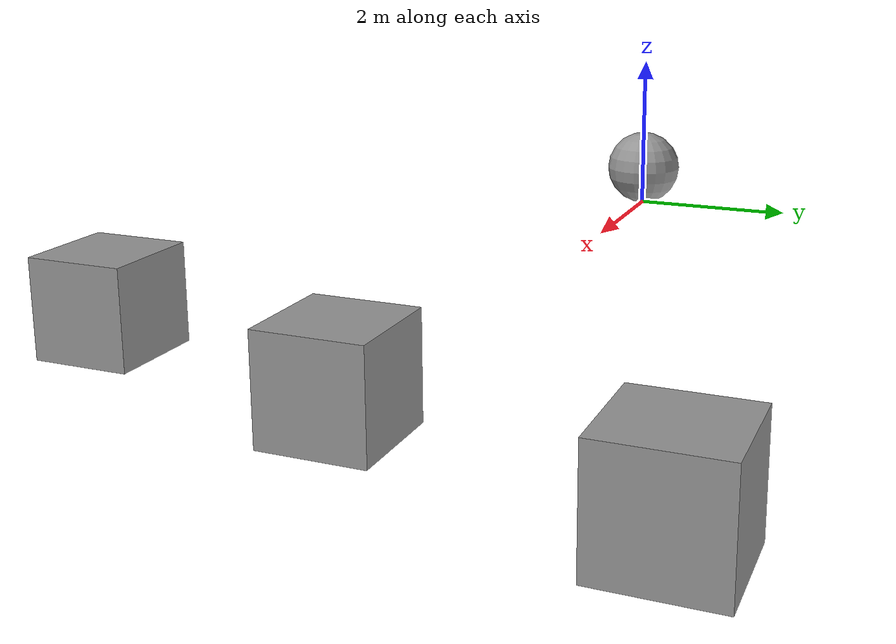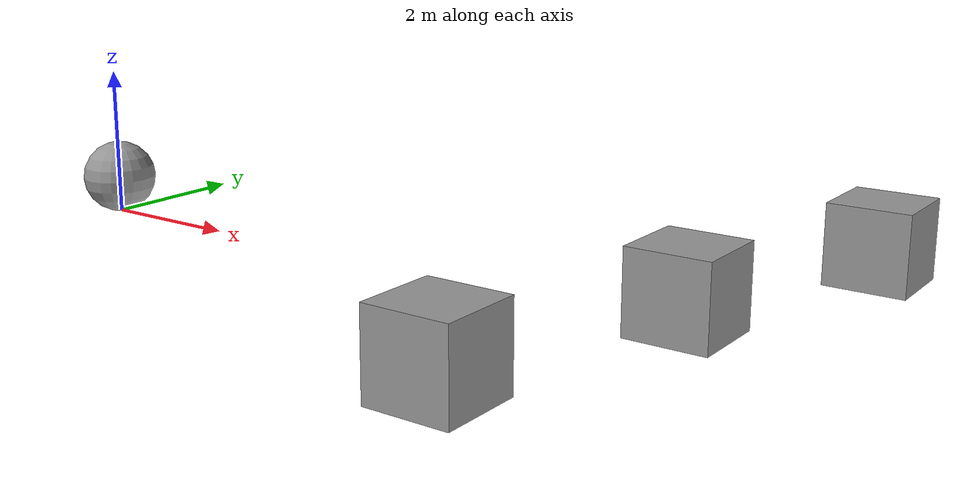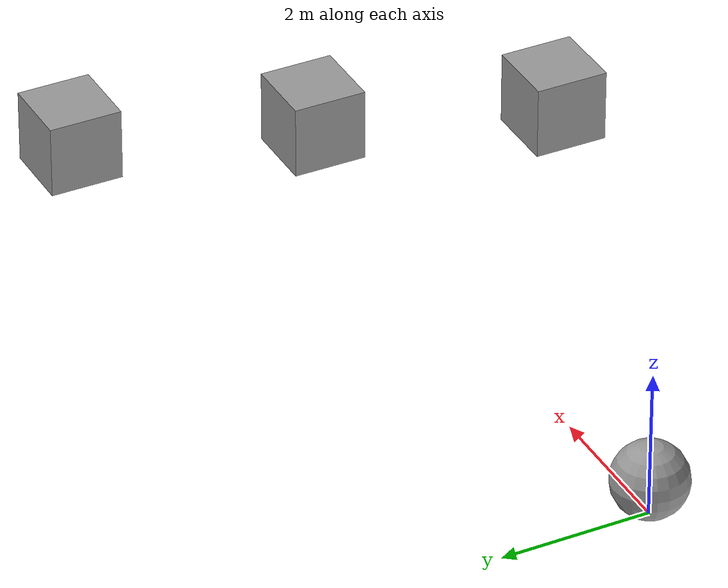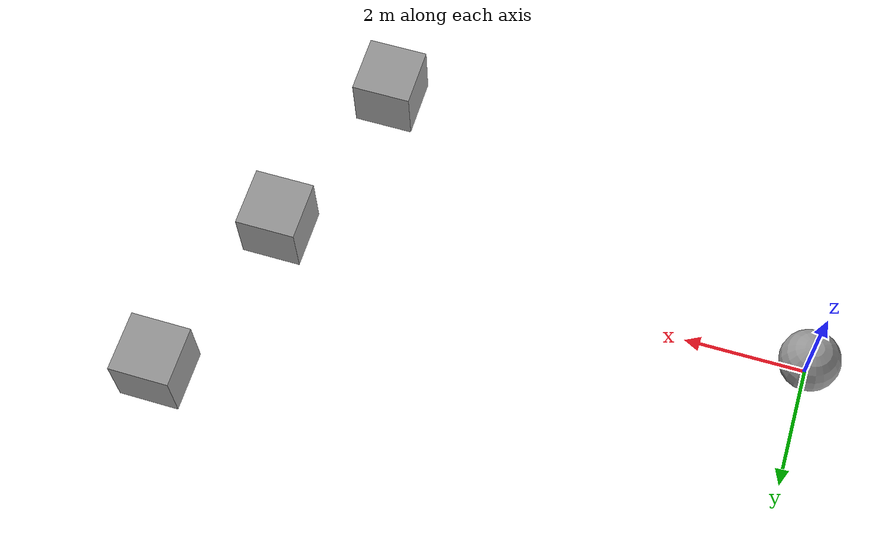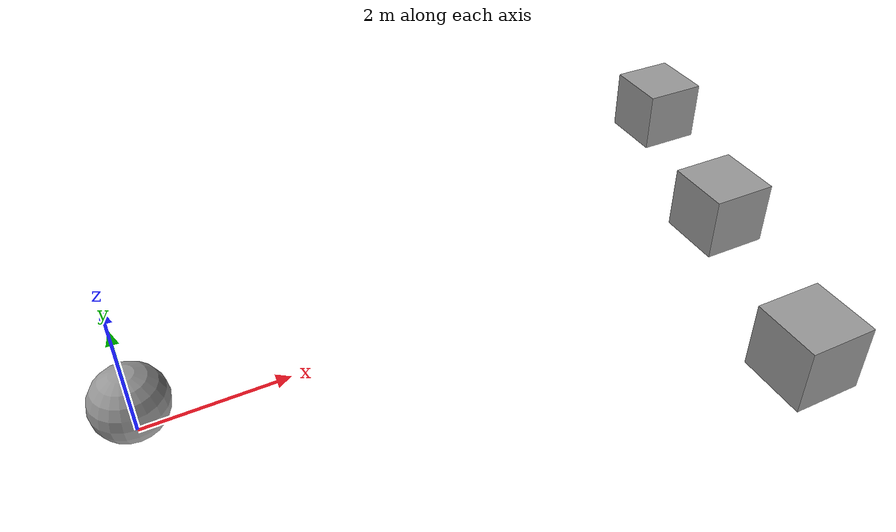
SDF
<sdf version="1.6">
 <world name="default">
  <scene>
   <grid>0</grid>
   <ambient>0.4 0.4 0.4 1</ambient>
   <background>0.7 0.7 0.7 1</background>
   <shadows>1</shadows>
  </scene>
  <light name="sun" type="directional">
   <pose>0 0 10 0 -0 0</pose>
   <diffuse>0.8 0.8 0.8 1</diffuse>
   <specular>0.1 0.1 0.1 1</specular>
   <attenuation>
    <range>1000</range>
    <constant>0.9</constant>
    <linear>0.01</linear>
    <quadratic>0.001</quadratic>
   </attenuation>
   <direction>-0.5 0.5 -1</direction>
  </light>
  <model name="ground">
   <link name="body">
    <collision name="geom">
     <geometry><plane><normal>0 0 1</normal><size>1 1</size></plane></geometry>
     <surface><friction><ode><mu>100</mu><mu2>50</mu2></ode></friction></surface>
    </collision>
   </link>
   <static>1</static>
  </model>
  <gravity>0 0 -9.8</gravity>
  <magnetic_field>6e-06 2.3e-05 -4.2e-05</magnetic_field>
  <atmosphere type="adiabatic"/>
  <physics name="default_physics" default="0" type="ode">
   <max_step_size>0.001</max_step_size>
   <real_time_factor>1</real_time_factor>
   <real_time_update_rate>1000</real_time_update_rate>
  </physics>
  <spherical_coordinates>
   <surface_model>EARTH_WGS84</surface_model>
   <latitude_deg>0</latitude_deg>
   <longitude_deg>0</longitude_deg>
   <elevation>0</elevation>
   <heading_deg>0</heading_deg>
  </spherical_coordinates>
  <model name="ballOfDoom_0">
   <link name="link">
    <inertial>
     <mass>1</mass>
     <inertia><ixx>0.1</ixx><ixy>0</ixy><ixz>0</ixz><iyy>0.1</iyy><iyz>0</iyz><izz>0.1</izz></inertia>
    </inertial>
    <visual name="visual">
     <geometry><sphere><radius>0.5</radius></sphere></geometry>
     <material>
      <script><name>Gazebo/Grey</name><uri>file://media/materials/scripts/gazebo.material</uri></script>
      <ambient>0.3 0.3 0.3 1</ambient>
      <diffuse>0.7 0.7 0.7 1</diffuse>
      <specular>0.01 0.01 0.01 1</specular>
      <emissive>0 0 0 1</emissive>
     </material>
    </visual>
    <collision name="collision">
     <geometry><sphere><radius>0.5</radius></sphere></geometry>
     <surface>
      <friction>
       <ode><mu>1</mu><mu2>1</mu2><fdir1>0 0 0</fdir1><slip1>0</slip1><slip2>0</slip2></ode>
       <torsional>
        <coefficient>1</coefficient>
        <patch_radius>0</patch_radius>
        <surface_radius>0</surface_radius>
        <use_patch_radius>1</use_patch_radius>
        <ode><slip>0</slip></ode>
       </torsional>
      </friction>
      <bounce><restitution_coefficient>0</restitution_coefficient><threshold>1e+06</threshold></bounce>
      <contact>
       <collide_without_contact>0</collide_without_contact>
       <collide_without_contact_bitmask>1</collide_without_contact_bitmask>
       <collide_bitmask>1</collide_bitmask>
       <ode>
        <soft_cfm>0</soft_cfm>
        <soft_erp>0.2</soft_erp>
        <kp>1e+13</kp>
        <kd>1</kd>
        <max_vel>0.01</max_vel>
        <min_depth>0</min_depth>
       </ode>
       <bullet>
        <split_impulse>1</split_impulse>
        <split_impulse_penetration_threshold>-0.01</split_impulse_penetration_threshold>
        <soft_cfm>0</soft_cfm>
        <soft_erp>0.2</soft_erp>
        <kp>1e+13</kp>
        <kd>1</kd>
       </bullet>
      </contact>
     </surface>
    </collision>
   </link>
   <link name="link_0">
    <pose>8 -3 0 0 -0 0</pose>
    <inertial>
     <mass>1</mass>
     <inertia>
      <ixx>0.166667</ixx>
      <ixy>0</ixy>
      <ixz>0</ixz>
      <iyy>0.166667</iyy>
      <iyz>0</iyz>
      <izz>0.166667</izz>
     </inertia>
    </inertial>
    <visual name="visual">
     <geometry><box><size>1 1 1</size></box></geometry>
     <material>
      <lighting>1</lighting>
      <script><uri>file://media/materials/scripts/gazebo.material</uri><name>Gazebo/Grey</name></script>
      <ambient>0.3 0.3 0.3 1</ambient>
      <diffuse>0.7 0.7 0.7 1</diffuse>
      <specular>0.01 0.01 0.01 1</specular>
      <emissive>0 0 0 1</emissive>
     </material>
    </visual>
    <collision name="collision">
     <geometry><box><size>1 1 1</size></box></geometry>
     <surface>
      <friction>
       <ode><mu>1</mu><mu2>1</mu2><fdir1>0 0 0</fdir1><slip1>0</slip1><slip2>0</slip2></ode>
       <torsional>
        <coefficient>1</coefficient>
        <patch_radius>0</patch_radius>
        <surface_radius>0</surface_radius>
        <use_patch_radius>1</use_patch_radius>
        <ode><slip>0</slip></ode>
       </torsional>
      </friction>
      <bounce><restitution_coefficient>0</restitution_coefficient><threshold>1e+06</threshold></bounce>
      <contact>
       <collide_without_contact>0</collide_without_contact>
       <collide_without_contact_bitmask>1</collide_without_contact_bitmask>
       <collide_bitmask>1</collide_bitmask>
       <ode>
        <soft_cfm>0</soft_cfm>
        <soft_erp>0.2</soft_erp>
        <kp>1e+13</kp>
        <kd>1</kd>
        <max_vel>0.01</max_vel>
        <min_depth>0</min_depth>
       </ode>
       <bullet>
        <split_impulse>1</split_impulse>
        <split_impulse_penetration_threshold>-0.01</split_impulse_penetration_threshold>
        <soft_cfm>0</soft_cfm>
        <soft_erp>0.2</soft_erp>
        <kp>1e+13</kp>
        <kd>1</kd>
       </bullet>
      </contact>
     </surface>
    </collision>
   </link>
   <link name="link_1">
    <pose>9 0 0 0 -0 0</pose>
    <inertial>
     <mass>1</mass>
     <inertia>
      <ixx>0.166667</ixx>
      <ixy>0</ixy>
      <ixz>0</ixz>
      <iyy>0.166667</iyy>
      <iyz>0</iyz>
      <izz>0.166667</izz>
     </inertia>
    </inertial>
    <visual name="visual">
     <geometry><box><size>1 1 1</size></box></geometry>
     <material>
      <lighting>1</lighting>
      <script><uri>file://media/materials/scripts/gazebo.material</uri><name>Gazebo/Grey</name></script>
      <ambient>0.3 0.3 0.3 1</ambient>
      <diffuse>0.7 0.7 0.7 1</diffuse>
      <specular>0.01 0.01 0.01 1</specular>
      <emissive>0 0 0 1</emissive>
     </material>
    </visual>
    <collision name="collision">
     <geometry><box><size>1 1 1</size></box></geometry>
     <surface>
      <friction>
       <ode><mu>1</mu><mu2>1</mu2><fdir1>0 0 0</fdir1><slip1>0</slip1><slip2>0</slip2></ode>
       <torsional>
        <coefficient>1</coefficient>
        <patch_radius>0</patch_radius>
        <surface_radius>0</surface_radius>
        <use_patch_radius>1</use_patch_radius>
        <ode><slip>0</slip></ode>
       </torsional>
      </friction>
      <bounce><restitution_coefficient>0</restitution_coefficient><threshold>1e+06</threshold></bounce>
      <contact>
       <collide_without_contact>0</collide_without_contact>
       <collide_without_contact_bitmask>1</collide_without_contact_bitmask>
       <collide_bitmask>1</collide_bitmask>
       <ode>
        <soft_cfm>0</soft_cfm>
        <soft_erp>0.2</soft_erp>
        <kp>1e+13</kp>
        <kd>1</kd>
        <max_vel>0.01</max_vel>
        <min_depth>0</min_depth>
       </ode>
       <bullet>
        <split_impulse>1</split_impulse>
        <split_impulse_penetration_threshold>-0.01</split_impulse_penetration_threshold>
        <soft_cfm>0</soft_cfm>
        <soft_erp>0.2</soft_erp>
        <kp>1e+13</kp>
        <kd>1</kd>
       </bullet>
      </contact>
     </surface>
    </collision>
   </link>
   <link name="link_2">
    <pose>10 3 0 0 -0 0</pose>
    <inertial>
     <mass>1</mass>
     <inertia>
      <ixx>0.166667</ixx>
      <ixy>0</ixy>
      <ixz>0</ixz>
      <iyy>0.166667</iyy>
      <iyz>0</iyz>
      <izz>0.166667</izz>
     </inertia>
    </inertial>
    <visual name="visual">
     <geometry><box><size>1 1 1</size></box></geometry>
     <material>
      <lighting>1</lighting>
      <script><uri>file://media/materials/scripts/gazebo.material</uri><name>Gazebo/Grey</name></script>
      <ambient>0.3 0.3 0.3 1</ambient>
      <diffuse>0.7 0.7 0.7 1</diffuse>
      <specular>0.01 0.01 0.01 1</specular>
      <emissive>0 0 0 1</emissive>
     </material>
    </visual>
    <collision name="collision">
     <geometry><box><size>1 1 1</size></box></geometry>
     <surface>
      <friction>
       <ode><mu>1</mu><mu2>1</mu2><fdir1>0 0 0</fdir1><slip1>0</slip1><slip2>0</slip2></ode>
       <torsional>
        <coefficient>1</coefficient>
        <patch_radius>0</patch_radius>
        <surface_radius>0</surface_radius>
        <use_patch_radius>1</use_patch_radius>
        <ode><slip>0</slip></ode>
       </torsional>
      </friction>
      <bounce><restitution_coefficient>0</restitution_coefficient><threshold>1e+06</threshold></bounce>
      <contact>
       <collide_without_contact>0</collide_without_contact>
       <collide_without_contact_bitmask>1</collide_without_contact_bitmask>
       <collide_bitmask>1</collide_bitmask>
       <ode>
        <soft_cfm>0</soft_cfm>
        <soft_erp>0.2</soft_erp>
        <kp>1e+13</kp>
        <kd>1</kd>
        <max_vel>0.01</max_vel>
        <min_depth>0</min_depth>
       </ode>
       <bullet>
        <split_impulse>1</split_impulse>
        <split_impulse_penetration_threshold>-0.01</split_impulse_penetration_threshold>
        <soft_cfm>0</soft_cfm>
        <soft_erp>0.2</soft_erp>
        <kp>1e+13</kp>
        <kd>1</kd>
       </bullet>
      </contact>
     </surface>
    </collision>
   </link>
   <static>0</static>
   <pose>0 0 0.5 0 -0 0</pose>
  </model>
 </world>
</sdf>
